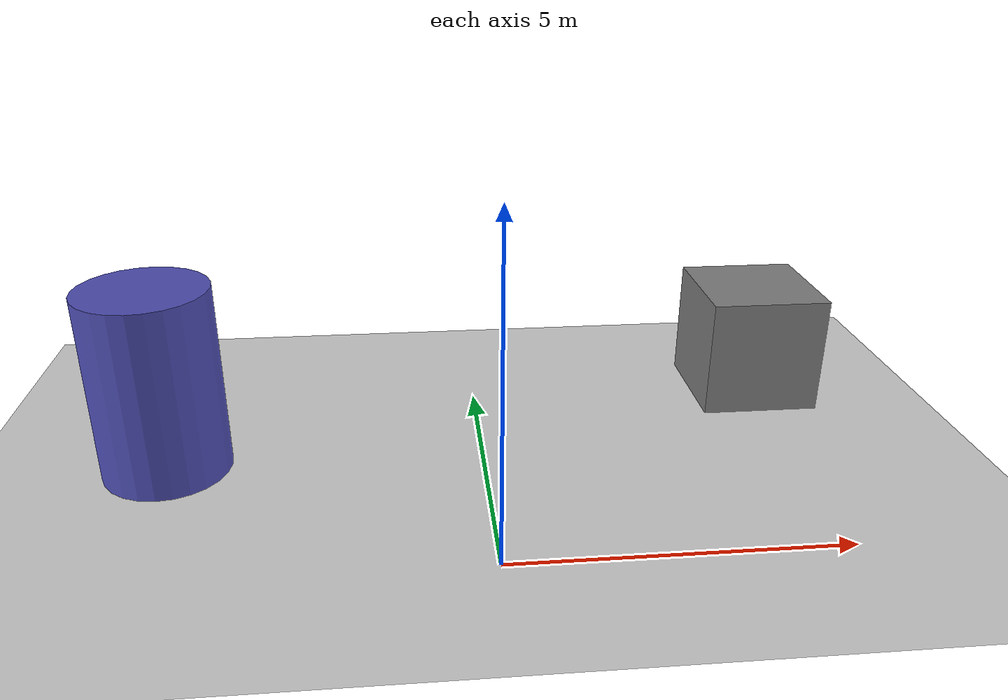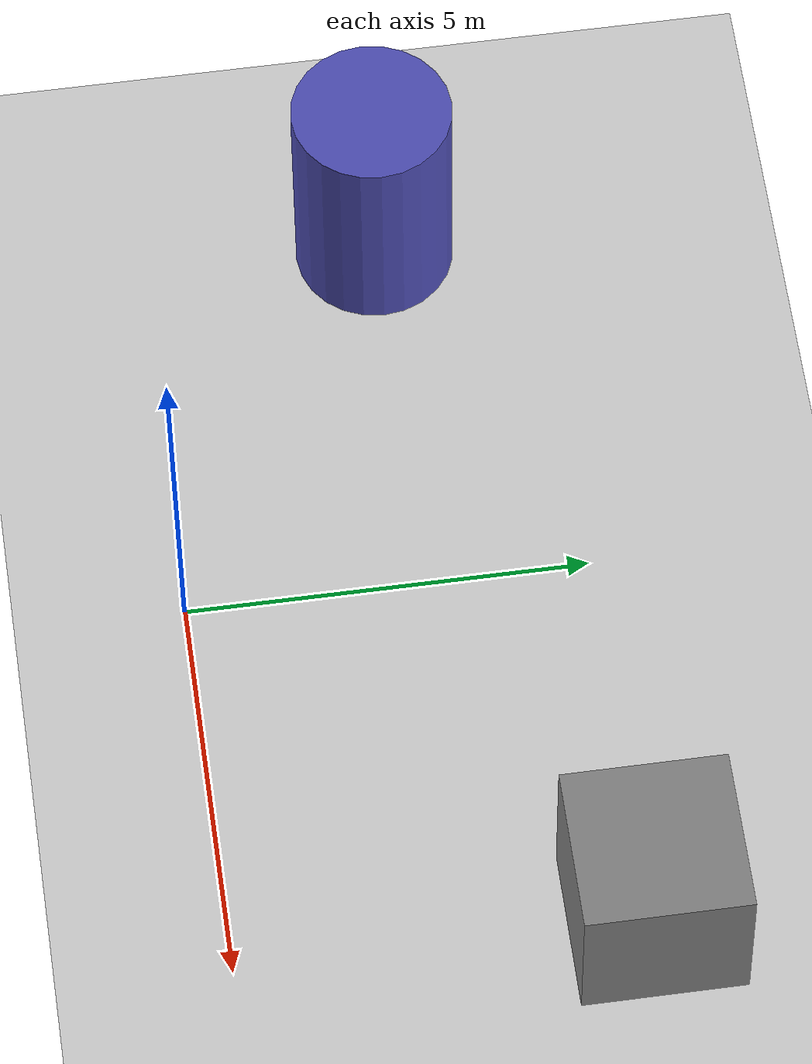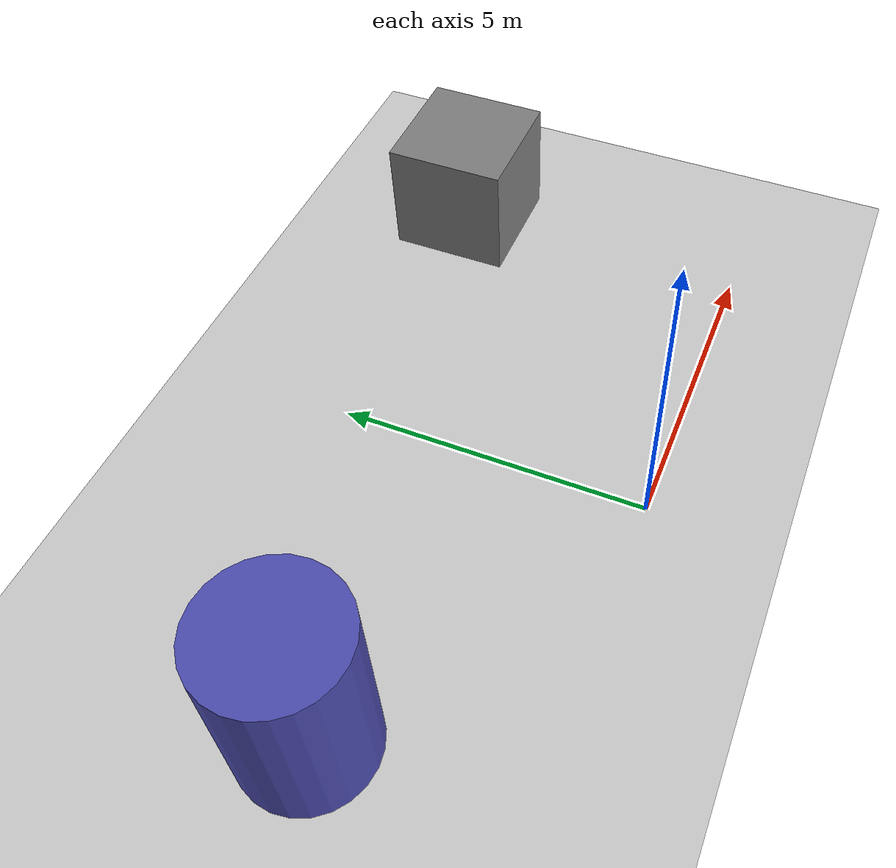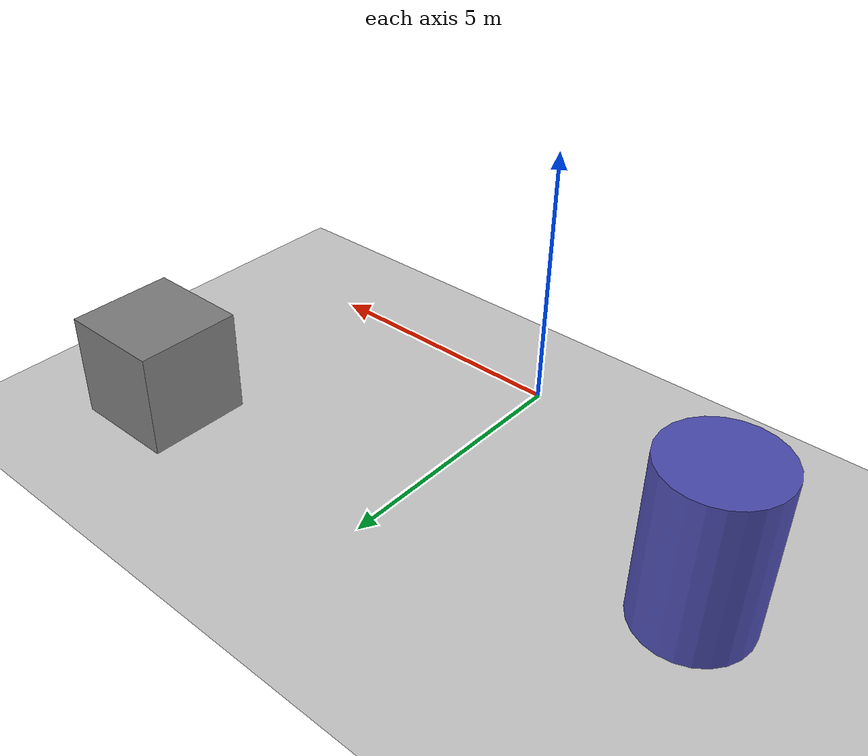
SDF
<?xml version="1.0" ?>
<sdf version="1.8">
  <world name="drone_world">
    <!-- Physics settings for stable drone simulation -->
    <physics name="1ms" type="ode">
      <max_step_size>0.001</max_step_size>
      <real_time_factor>1.0</real_time_factor>
      <real_time_update_rate>1000</real_time_update_rate>
    </physics>

    <!-- Lighting -->
    <light type="directional" name="sun">
      <cast_shadows>true</cast_shadows>
      <pose>0 0 10 0 0 0</pose>
      <diffuse>0.8 0.8 0.8 1</diffuse>
      <specular>0.2 0.2 0.2 1</specular>
      <attenuation>
        <range>1000</range>
        <constant>0.9</constant>
        <linear>0.01</linear>
        <quadratic>0.001</quadratic>
      </attenuation>
      <direction>-0.5 0.1 -0.9</direction>
    </light>

    <!-- Ground plane -->
    <model name="ground_plane">
      <static>true</static>
      <link name="link">
        <collision name="collision">
          <geometry>
            <plane>
              <normal>0 0 1</normal>
              <size>100 100</size>
            </plane>
          </geometry>
        </collision>
        <visual name="visual">
          <geometry>
            <plane>
              <normal>0 0 1</normal>
              <size>100 100</size>
            </plane>
          </geometry>
          <material>
            <ambient>0.8 0.8 0.8 1</ambient>
            <diffuse>0.8 0.8 0.8 1</diffuse>
            <specular>0.8 0.8 0.8 1</specular>
          </material>
        </visual>
      </link>
    </model>

    <!-- Add some obstacles for navigation -->
    <model name="obstacle_1">
      <static>true</static>
      <pose>5 5 1 0 0 0</pose>
      <link name="link">
        <collision name="collision">
          <geometry>
            <box>
              <size>2 2 2</size>
            </box>
          </geometry>
        </collision>
        <visual name="visual">
          <geometry>
            <box>
              <size>2 2 2</size>
            </box>
          </geometry>
          <material>
            <ambient>0.5 0.5 0.5 1</ambient>
            <diffuse>0.5 0.5 0.5 1</diffuse>
          </material>
        </visual>
      </link>
    </model>

    <model name="obstacle_2">
      <static>true</static>
      <pose>-5 3 1.5 0 0 0</pose>
      <link name="link">
        <collision name="collision">
          <geometry>
            <cylinder>
              <radius>1</radius>
              <length>3</length>
            </cylinder>
          </geometry>
        </collision>
        <visual name="visual">
          <geometry>
            <cylinder>
              <radius>1</radius>
              <length>3</length>
            </cylinder>
          </geometry>
          <material>
            <ambient>0.3 0.3 0.7 1</ambient>
            <diffuse>0.3 0.3 0.7 1</diffuse>
          </material>
        </visual>
      </link>
    </model>
  </world>
</sdf>
